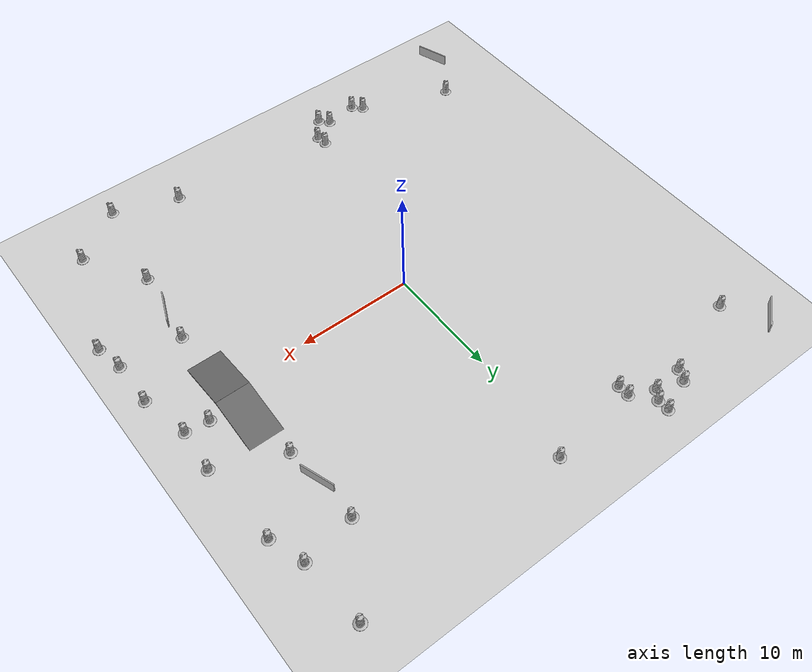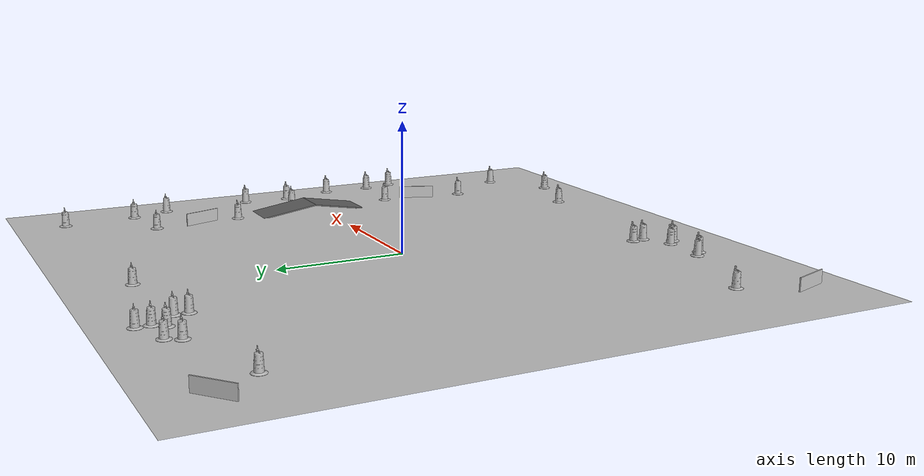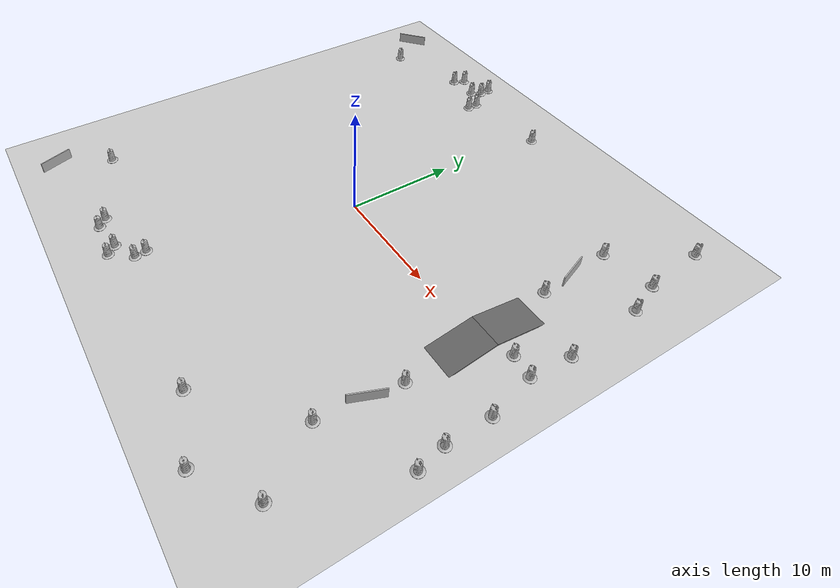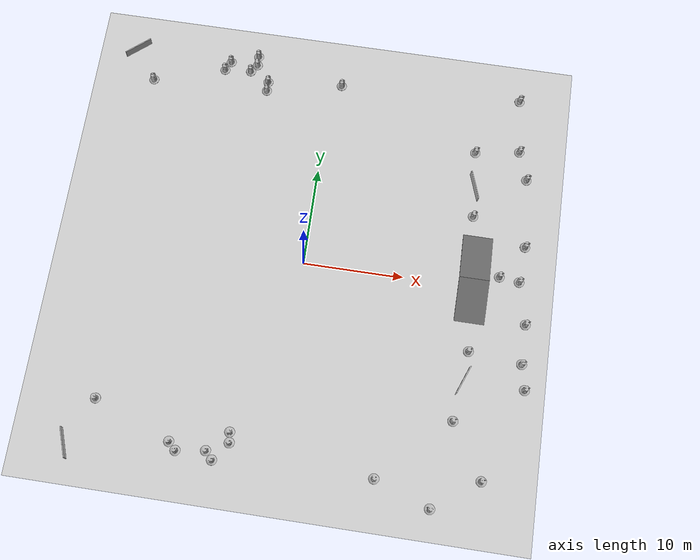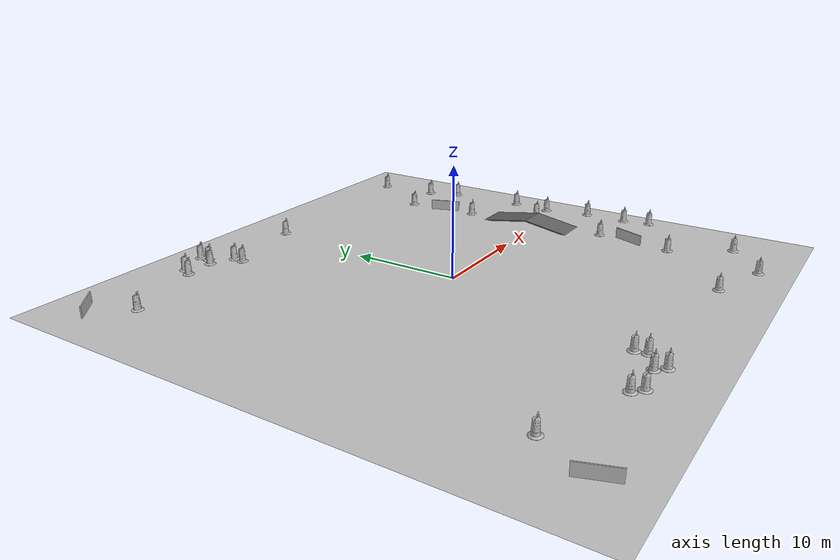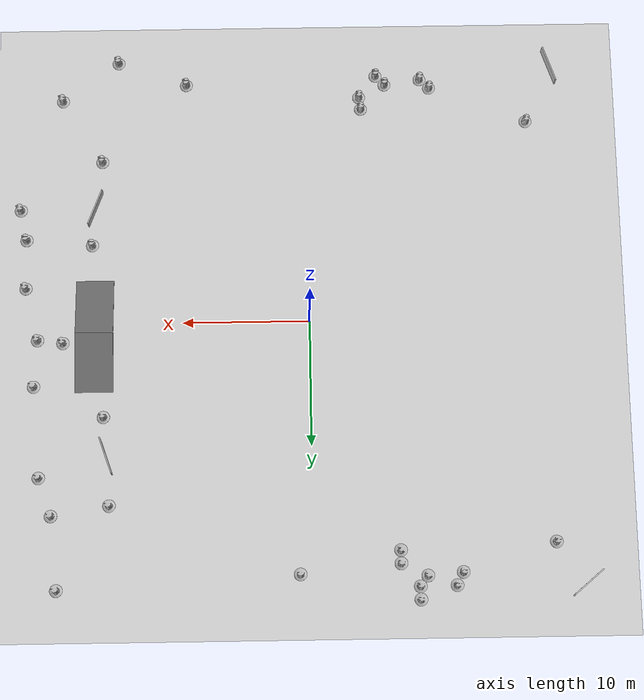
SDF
<sdf version="1.7">
 <world name="default">
  <model name="igvc_basic_ground">
   <static>1</static>
   <link name="link">
    <collision name="collision">
     <geometry><plane><normal>0 0 1</normal><size>50 50</size></plane></geometry>
     <surface><friction><ode><mu>100</mu><mu2>50</mu2></ode></friction></surface>
    </collision>
    <visual name="visual">
     <cast_shadows>0</cast_shadows>
     <geometry><plane><normal>0 0 1</normal><size>50 50</size></plane></geometry>
     <material>
      <script>
       <uri>model://igvc_basic_ground/materials/scripts</uri>
       <uri>model://igvc_basic_ground/materials/textures</uri>
       <name>igvc_pavement/Image</name>
      </script>
     </material>
    </visual>
    <velocity_decay><linear>0</linear><angular>0</angular></velocity_decay>
   </link>
  </model>
  <light name="sun" type="directional">
   <pose>0 0 10 0 -0 0</pose>
   <diffuse>1 1 1 1</diffuse>
   <specular>0.2 0.2 0.2 1</specular>
   <attenuation>
    <range>1000</range>
    <constant>0.9</constant>
    <linear>0.01</linear>
    <quadratic>0.001</quadratic>
   </attenuation>
   <direction>-0.5 0.1 -0.9</direction>
   <spot><inner_angle>0</inner_angle><outer_angle>0</outer_angle><falloff>0</falloff></spot>
  </light>
  <physics name="default_physics" default="0" type="ode">
   <max_step_size>0.001</max_step_size>
   <real_time_factor>1</real_time_factor>
   <real_time_update_rate>1000</real_time_update_rate>
  </physics>
  <scene><ambient>1 1 1 1</ambient><background>0.7 0.7 0.7 1</background><shadows>1</shadows></scene>
  <spherical_coordinates>
   <surface_model>EARTH_WGS84</surface_model>
   <latitude_deg>0</latitude_deg>
   <longitude_deg>0</longitude_deg>
   <elevation>0</elevation>
   <heading_deg>0</heading_deg>
  </spherical_coordinates>
  <model name="Construction Barrel_1">
   <link name="link">
    <inertial>
     <pose>0 0 0.4 0 -0 0</pose>
     <mass>500</mass>
     <inertia><ixx>51.2096</ixx><iyy>51.2096</iyy><izz>25</izz><ixy>0</ixy><ixz>0</ixz><iyz>0</iyz></inertia>
    </inertial>
    <collision name="collision">
     <geometry><mesh><uri>model://construction_barrel/meshes/construction_barrel.dae</uri></mesh></geometry>
    </collision>
    <visual name="visual">
     <geometry><mesh><uri>model://construction_barrel/meshes/construction_barrel.dae</uri></mesh></geometry>
    </visual>
    <velocity_decay><linear>0</linear><angular>0</angular></velocity_decay>
   </link>
   <pose>-17.75 -16.5001 -2e-06 1e-06 8e-06 -0.003073</pose>
   <static>0</static>
  </model>
  <model name="Construction Barrel_3">
   <link name="link">
    <inertial>
     <pose>0 0 0.4 0 -0 0</pose>
     <mass>500</mass>
     <inertia><ixx>51.2096</ixx><iyy>51.2096</iyy><izz>25</izz><ixy>0</ixy><ixz>0</ixz><iyz>0</iyz></inertia>
    </inertial>
    <collision name="collision">
     <geometry><mesh><uri>model://construction_barrel/meshes/construction_barrel.dae</uri></mesh></geometry>
    </collision>
    <visual name="visual">
     <geometry><mesh><uri>model://construction_barrel/meshes/construction_barrel.dae</uri></mesh></geometry>
    </visual>
    <velocity_decay><linear>0</linear><angular>0</angular></velocity_decay>
   </link>
   <pose>-10 -19.5001 -2e-06 1e-06 8e-06 -0.002858</pose>
   <static>0</static>
  </model>
  <model name="Construction Barrel_4">
   <link name="link">
    <inertial>
     <pose>0 0 0.4 0 -0 0</pose>
     <mass>500</mass>
     <inertia><ixx>51.2096</ixx><iyy>51.2096</iyy><izz>25</izz><ixy>0</ixy><ixz>0</ixz><iyz>0</iyz></inertia>
    </inertial>
    <collision name="collision">
     <geometry><mesh><uri>model://construction_barrel/meshes/construction_barrel.dae</uri></mesh></geometry>
    </collision>
    <visual name="visual">
     <geometry><mesh><uri>model://construction_barrel/meshes/construction_barrel.dae</uri></mesh></geometry>
    </visual>
    <velocity_decay><linear>0</linear><angular>0</angular></velocity_decay>
   </link>
   <pose>-9.25006 -20.2501 -2e-06 1e-06 8e-06 -0.002888</pose>
   <static>0</static>
  </model>
  <model name="Construction Barrel_5">
   <link name="link">
    <inertial>
     <pose>0 0 0.4 0 -0 0</pose>
     <mass>500</mass>
     <inertia><ixx>51.2096</ixx><iyy>51.2096</iyy><izz>25</izz><ixy>0</ixy><ixz>0</ixz><iyz>0</iyz></inertia>
    </inertial>
    <collision name="collision">
     <geometry><mesh><uri>model://construction_barrel/meshes/construction_barrel.dae</uri></mesh></geometry>
    </collision>
    <visual name="visual">
     <geometry><mesh><uri>model://construction_barrel/meshes/construction_barrel.dae</uri></mesh></geometry>
    </visual>
    <velocity_decay><linear>0</linear><angular>0</angular></velocity_decay>
   </link>
   <pose>-6.37793 -19.8236 1e-06 3e-06 2e-06 0.061745</pose>
   <static>0</static>
  </model>
  <model name="Construction Barrel_6">
   <link name="link">
    <inertial>
     <pose>0 0 0.4 0 -0 0</pose>
     <mass>500</mass>
     <inertia><ixx>51.2096</ixx><iyy>51.2096</iyy><izz>25</izz><ixy>0</ixy><ixz>0</ixz><iyz>0</iyz></inertia>
    </inertial>
    <collision name="collision">
     <geometry><mesh><uri>model://construction_barrel/meshes/construction_barrel.dae</uri></mesh></geometry>
    </collision>
    <visual name="visual">
     <geometry><mesh><uri>model://construction_barrel/meshes/construction_barrel.dae</uri></mesh></geometry>
    </visual>
    <velocity_decay><linear>0</linear><angular>0</angular></velocity_decay>
   </link>
   <pose>-5.66414 -20.6097 -1e-06 3e-06 -2e-06 -0.002067</pose>
   <static>0</static>
  </model>
  <model name="Construction Barrel_8">
   <link name="link">
    <inertial>
     <pose>0 0 0.4 0 -0 0</pose>
     <mass>500</mass>
     <inertia><ixx>51.2096</ixx><iyy>51.2096</iyy><izz>25</izz><ixy>0</ixy><ixz>0</ixz><iyz>0</iyz></inertia>
    </inertial>
    <collision name="collision">
     <geometry><mesh><uri>model://construction_barrel/meshes/construction_barrel.dae</uri></mesh></geometry>
    </collision>
    <visual name="visual">
     <geometry><mesh><uri>model://construction_barrel/meshes/construction_barrel.dae</uri></mesh></geometry>
    </visual>
    <velocity_decay><linear>0</linear><angular>0</angular></velocity_decay>
   </link>
   <pose>-4.41654 -17.754 -2e-06 -7e-06 -4e-06 0.03876</pose>
   <static>0</static>
  </model>
  <model name="Construction Barrel_9">
   <link name="link">
    <inertial>
     <pose>0 0 0.4 0 -0 0</pose>
     <mass>500</mass>
     <inertia><ixx>51.2096</ixx><iyy>51.2096</iyy><izz>25</izz><ixy>0</ixy><ixz>0</ixz><iyz>0</iyz></inertia>
    </inertial>
    <collision name="collision">
     <geometry><mesh><uri>model://construction_barrel/meshes/construction_barrel.dae</uri></mesh></geometry>
    </collision>
    <visual name="visual">
     <geometry><mesh><uri>model://construction_barrel/meshes/construction_barrel.dae</uri></mesh></geometry>
    </visual>
    <velocity_decay><linear>0</linear><angular>0</angular></velocity_decay>
   </link>
   <pose>-4.29013 -18.7611 -0 0 -0 0.086159</pose>
   <static>0</static>
  </model>
  <model name="Construction Barrel_11">
   <link name="link">
    <inertial>
     <pose>0 0 0.4 0 -0 0</pose>
     <mass>500</mass>
     <inertia><ixx>51.2096</ixx><iyy>51.2096</iyy><izz>25</izz><ixy>0</ixy><ixz>0</ixz><iyz>0</iyz></inertia>
    </inertial>
    <collision name="collision">
     <geometry><mesh><uri>model://construction_barrel/meshes/construction_barrel.dae</uri></mesh></geometry>
    </collision>
    <visual name="visual">
     <geometry><mesh><uri>model://construction_barrel/meshes/construction_barrel.dae</uri></mesh></geometry>
    </visual>
    <velocity_decay><linear>0</linear><angular>0</angular></velocity_decay>
   </link>
   <pose>9.74153 -20.0166 -0 0 -0 0.039833</pose>
   <static>0</static>
  </model>
  <model name="Construction Barrel_12">
   <link name="link">
    <inertial>
     <pose>0 0 0.4 0 -0 0</pose>
     <mass>500</mass>
     <inertia><ixx>51.2096</ixx><iyy>51.2096</iyy><izz>25</izz><ixy>0</ixy><ixz>0</ixz><iyz>0</iyz></inertia>
    </inertial>
    <collision name="collision">
     <geometry><mesh><uri>model://construction_barrel/meshes/construction_barrel.dae</uri></mesh></geometry>
    </collision>
    <visual name="visual">
     <geometry><mesh><uri>model://construction_barrel/meshes/construction_barrel.dae</uri></mesh></geometry>
    </visual>
    <velocity_decay><linear>0</linear><angular>0</angular></velocity_decay>
   </link>
   <pose>15.2499 -21.9926 -0 0 -0 -0.002747</pose>
   <static>0</static>
  </model>
  <model name="Construction Barrel_13">
   <link name="link">
    <inertial>
     <pose>0 0 0.4 0 -0 0</pose>
     <mass>500</mass>
     <inertia><ixx>51.2096</ixx><iyy>51.2096</iyy><izz>25</izz><ixy>0</ixy><ixz>0</ixz><iyz>0</iyz></inertia>
    </inertial>
    <collision name="collision">
     <geometry><mesh><uri>model://construction_barrel/meshes/construction_barrel.dae</uri></mesh></geometry>
    </collision>
    <visual name="visual">
     <geometry><mesh><uri>model://construction_barrel/meshes/construction_barrel.dae</uri></mesh></geometry>
    </visual>
    <velocity_decay><linear>0</linear><angular>0</angular></velocity_decay>
   </link>
   <pose>19.75 -18.7501 -2e-06 1e-06 8e-06 -0.002206</pose>
   <static>0</static>
  </model>
  <model name="Construction Barrel_14">
   <link name="link">
    <inertial>
     <pose>0 0 0.4 0 -0 0</pose>
     <mass>500</mass>
     <inertia><ixx>51.2096</ixx><iyy>51.2096</iyy><izz>25</izz><ixy>0</ixy><ixz>0</ixz><iyz>0</iyz></inertia>
    </inertial>
    <collision name="collision">
     <geometry><mesh><uri>model://construction_barrel/meshes/construction_barrel.dae</uri></mesh></geometry>
    </collision>
    <visual name="visual">
     <geometry><mesh><uri>model://construction_barrel/meshes/construction_barrel.dae</uri></mesh></geometry>
    </visual>
    <velocity_decay><linear>0</linear><angular>0</angular></velocity_decay>
   </link>
   <pose>16.4998 -13.5015 0 0 0 -0.045295</pose>
   <static>0</static>
  </model>
  <model name="Construction Barrel_15">
   <link name="link">
    <inertial>
     <pose>0 0 0.4 0 -0 0</pose>
     <mass>500</mass>
     <inertia><ixx>51.2096</ixx><iyy>51.2096</iyy><izz>25</izz><ixy>0</ixy><ixz>0</ixz><iyz>0</iyz></inertia>
    </inertial>
    <collision name="collision">
     <geometry><mesh><uri>model://construction_barrel/meshes/construction_barrel.dae</uri></mesh></geometry>
    </collision>
    <visual name="visual">
     <geometry><mesh><uri>model://construction_barrel/meshes/construction_barrel.dae</uri></mesh></geometry>
    </visual>
    <velocity_decay><linear>0</linear><angular>0</angular></velocity_decay>
   </link>
   <pose>22.9999 -9.50015 -2e-06 7e-06 -4e-06 -0.000135</pose>
   <static>0</static>
  </model>
  <model name="Construction Barrel_16">
   <link name="link">
    <inertial>
     <pose>0 0 0.4 0 -0 0</pose>
     <mass>500</mass>
     <inertia><ixx>51.2096</ixx><iyy>51.2096</iyy><izz>25</izz><ixy>0</ixy><ixz>0</ixz><iyz>0</iyz></inertia>
    </inertial>
    <collision name="collision">
     <geometry><mesh><uri>model://construction_barrel/meshes/construction_barrel.dae</uri></mesh></geometry>
    </collision>
    <visual name="visual">
     <geometry><mesh><uri>model://construction_barrel/meshes/construction_barrel.dae</uri></mesh></geometry>
    </visual>
    <velocity_decay><linear>0</linear><angular>0</angular></velocity_decay>
   </link>
   <pose>17.25 -6.50011 -2e-06 1e-06 8e-06 -0.001931</pose>
   <static>0</static>
  </model>
  <model name="Construction Barrel_17">
   <link name="link">
    <inertial>
     <pose>0 0 0.4 0 -0 0</pose>
     <mass>500</mass>
     <inertia><ixx>51.2096</ixx><iyy>51.2096</iyy><izz>25</izz><ixy>0</ixy><ixz>0</ixz><iyz>0</iyz></inertia>
    </inertial>
    <collision name="collision">
     <geometry><mesh><uri>model://construction_barrel/meshes/construction_barrel.dae</uri></mesh></geometry>
    </collision>
    <visual name="visual">
     <geometry><mesh><uri>model://construction_barrel/meshes/construction_barrel.dae</uri></mesh></geometry>
    </visual>
    <velocity_decay><linear>0</linear><angular>0</angular></velocity_decay>
   </link>
   <pose>22.5 -7.00012 -1e-06 3e-06 7e-06 -0.000993</pose>
   <static>0</static>
  </model>
  <model name="Construction Barrel_18">
   <link name="link">
    <inertial>
     <pose>0 0 0.4 0 -0 0</pose>
     <mass>500</mass>
     <inertia><ixx>51.2096</ixx><iyy>51.2096</iyy><izz>25</izz><ixy>0</ixy><ixz>0</ixz><iyz>0</iyz></inertia>
    </inertial>
    <collision name="collision">
     <geometry><mesh><uri>model://construction_barrel/meshes/construction_barrel.dae</uri></mesh></geometry>
    </collision>
    <visual name="visual">
     <geometry><mesh><uri>model://construction_barrel/meshes/construction_barrel.dae</uri></mesh></geometry>
    </visual>
    <velocity_decay><linear>0</linear><angular>0</angular></velocity_decay>
   </link>
   <pose>22.5 -3.00011 -2e-06 1e-06 8e-06 -0.001837</pose>
   <static>0</static>
  </model>
  <model name="Construction Barrel_19">
   <link name="link">
    <inertial>
     <pose>0 0 0.4 0 -0 0</pose>
     <mass>500</mass>
     <inertia><ixx>51.2096</ixx><iyy>51.2096</iyy><izz>25</izz><ixy>0</ixy><ixz>0</ixz><iyz>0</iyz></inertia>
    </inertial>
    <collision name="collision">
     <geometry><mesh><uri>model://construction_barrel/meshes/construction_barrel.dae</uri></mesh></geometry>
    </collision>
    <visual name="visual">
     <geometry><mesh><uri>model://construction_barrel/meshes/construction_barrel.dae</uri></mesh></geometry>
    </visual>
    <velocity_decay><linear>0</linear><angular>0</angular></velocity_decay>
   </link>
   <pose>21.4999 1.24986 -2e-06 -7e-06 -9e-06 -0.000117</pose>
   <static>0</static>
  </model>
  <model name="Construction Barrel_20">
   <link name="link">
    <inertial>
     <pose>0 0 0.4 0 -0 0</pose>
     <mass>500</mass>
     <inertia><ixx>51.2096</ixx><iyy>51.2096</iyy><izz>25</izz><ixy>0</ixy><ixz>0</ixz><iyz>0</iyz></inertia>
    </inertial>
    <collision name="collision">
     <geometry><mesh><uri>model://construction_barrel/meshes/construction_barrel.dae</uri></mesh></geometry>
    </collision>
    <visual name="visual">
     <geometry><mesh><uri>model://construction_barrel/meshes/construction_barrel.dae</uri></mesh></geometry>
    </visual>
    <velocity_decay><linear>0</linear><angular>0</angular></velocity_decay>
   </link>
   <pose>19.4996 1.5001 -2e-06 8e-06 -4e-06 5.1e-05</pose>
   <static>0</static>
  </model>
  <model name="Construction Barrel_21">
   <link name="link">
    <inertial>
     <pose>0 0 0.4 0 -0 0</pose>
     <mass>500</mass>
     <inertia><ixx>51.2096</ixx><iyy>51.2096</iyy><izz>25</izz><ixy>0</ixy><ixz>0</ixz><iyz>0</iyz></inertia>
    </inertial>
    <collision name="collision">
     <geometry><mesh><uri>model://construction_barrel/meshes/construction_barrel.dae</uri></mesh></geometry>
    </collision>
    <visual name="visual">
     <geometry><mesh><uri>model://construction_barrel/meshes/construction_barrel.dae</uri></mesh></geometry>
    </visual>
    <velocity_decay><linear>0</linear><angular>0</angular></velocity_decay>
   </link>
   <pose>21.75 4.99988 -2e-06 7e-06 -4e-06 -0.001417</pose>
   <static>0</static>
  </model>
  <model name="Construction Barrel_22">
   <link name="link">
    <inertial>
     <pose>0 0 0.4 0 -0 0</pose>
     <mass>500</mass>
     <inertia><ixx>51.2096</ixx><iyy>51.2096</iyy><izz>25</izz><ixy>0</ixy><ixz>0</ixz><iyz>0</iyz></inertia>
    </inertial>
    <collision name="collision">
     <geometry><mesh><uri>model://construction_barrel/meshes/construction_barrel.dae</uri></mesh></geometry>
    </collision>
    <visual name="visual">
     <geometry><mesh><uri>model://construction_barrel/meshes/construction_barrel.dae</uri></mesh></geometry>
    </visual>
    <velocity_decay><linear>0</linear><angular>0</angular></velocity_decay>
   </link>
   <pose>21.25 12.2499 -3e-06 0 -1.2e-05 -0.001355</pose>
   <static>0</static>
  </model>
  <model name="Construction Barrel_23">
   <link name="link">
    <inertial>
     <pose>0 0 0.4 0 -0 0</pose>
     <mass>500</mass>
     <inertia><ixx>51.2096</ixx><iyy>51.2096</iyy><izz>25</izz><ixy>0</ixy><ixz>0</ixz><iyz>0</iyz></inertia>
    </inertial>
    <collision name="collision">
     <geometry><mesh><uri>model://construction_barrel/meshes/construction_barrel.dae</uri></mesh></geometry>
    </collision>
    <visual name="visual">
     <geometry><mesh><uri>model://construction_barrel/meshes/construction_barrel.dae</uri></mesh></geometry>
    </visual>
    <velocity_decay><linear>0</linear><angular>0</angular></velocity_decay>
   </link>
   <pose>16.25 7.49988 -3e-06 0 -1.2e-05 -0.0012</pose>
   <static>0</static>
  </model>
  <model name="Construction Barrel_24">
   <link name="link">
    <inertial>
     <pose>0 0 0.4 0 -0 0</pose>
     <mass>500</mass>
     <inertia><ixx>51.2096</ixx><iyy>51.2096</iyy><izz>25</izz><ixy>0</ixy><ixz>0</ixz><iyz>0</iyz></inertia>
    </inertial>
    <collision name="collision">
     <geometry><mesh><uri>model://construction_barrel/meshes/construction_barrel.dae</uri></mesh></geometry>
    </collision>
    <visual name="visual">
     <geometry><mesh><uri>model://construction_barrel/meshes/construction_barrel.dae</uri></mesh></geometry>
    </visual>
    <velocity_decay><linear>0</linear><angular>0</angular></velocity_decay>
   </link>
   <pose>20.25 15.2499 -0 0 0 -0.001132</pose>
   <static>0</static>
  </model>
  <model name="Construction Barrel_25">
   <link name="link">
    <inertial>
     <pose>0 0 0.4 0 -0 0</pose>
     <mass>500</mass>
     <inertia><ixx>51.2096</ixx><iyy>51.2096</iyy><izz>25</izz><ixy>0</ixy><ixz>0</ixz><iyz>0</iyz></inertia>
    </inertial>
    <collision name="collision">
     <geometry><mesh><uri>model://construction_barrel/meshes/construction_barrel.dae</uri></mesh></geometry>
    </collision>
    <visual name="visual">
     <geometry><mesh><uri>model://construction_barrel/meshes/construction_barrel.dae</uri></mesh></geometry>
    </visual>
    <velocity_decay><linear>0</linear><angular>0</angular></velocity_decay>
   </link>
   <pose>15.75 14.4999 -0 0 0 -0.001114</pose>
   <static>0</static>
  </model>
  <model name="Construction Barrel_26">
   <link name="link">
    <inertial>
     <pose>0 0 0.4 0 -0 0</pose>
     <mass>500</mass>
     <inertia><ixx>51.2096</ixx><iyy>51.2096</iyy><izz>25</izz><ixy>0</ixy><ixz>0</ixz><iyz>0</iyz></inertia>
    </inertial>
    <collision name="collision">
     <geometry><mesh><uri>model://construction_barrel/meshes/construction_barrel.dae</uri></mesh></geometry>
    </collision>
    <visual name="visual">
     <geometry><mesh><uri>model://construction_barrel/meshes/construction_barrel.dae</uri></mesh></geometry>
    </visual>
    <velocity_decay><linear>0</linear><angular>0</angular></velocity_decay>
   </link>
   <pose>19.75 20.9999 -0 0 0 -0.001087</pose>
   <static>0</static>
  </model>
  <model name="Construction Barrel_28">
   <link name="link">
    <inertial>
     <pose>0 0 0.4 0 -0 0</pose>
     <mass>500</mass>
     <inertia><ixx>51.2096</ixx><iyy>51.2096</iyy><izz>25</izz><ixy>0</ixy><ixz>0</ixz><iyz>0</iyz></inertia>
    </inertial>
    <collision name="collision">
     <geometry><mesh><uri>model://construction_barrel/meshes/construction_barrel.dae</uri></mesh></geometry>
    </collision>
    <visual name="visual">
     <geometry><mesh><uri>model://construction_barrel/meshes/construction_barrel.dae</uri></mesh></geometry>
    </visual>
    <velocity_decay><linear>0</linear><angular>0</angular></velocity_decay>
   </link>
   <pose>-18.75 17.7499 -2e-06 7e-06 -4e-06 -0.000925</pose>
   <static>0</static>
  </model>
  <model name="Construction Barrel_29">
   <link name="link">
    <inertial>
     <pose>0 0 0.4 0 -0 0</pose>
     <mass>500</mass>
     <inertia><ixx>51.2096</ixx><iyy>51.2096</iyy><izz>25</izz><ixy>0</ixy><ixz>0</ixz><iyz>0</iyz></inertia>
    </inertial>
    <collision name="collision">
     <geometry><mesh><uri>model://construction_barrel/meshes/construction_barrel.dae</uri></mesh></geometry>
    </collision>
    <visual name="visual">
     <geometry><mesh><uri>model://construction_barrel/meshes/construction_barrel.dae</uri></mesh></geometry>
    </visual>
    <velocity_decay><linear>0</linear><angular>0</angular></velocity_decay>
   </link>
   <pose>-11.5 19.9999 -1e-06 3e-06 -2e-06 -0.000897</pose>
   <static>0</static>
  </model>
  <model name="Construction Barrel_30">
   <link name="link">
    <inertial>
     <pose>0 0 0.4 0 -0 0</pose>
     <mass>500</mass>
     <inertia><ixx>51.2096</ixx><iyy>51.2096</iyy><izz>25</izz><ixy>0</ixy><ixz>0</ixz><iyz>0</iyz></inertia>
    </inertial>
    <collision name="collision">
     <geometry><mesh><uri>model://construction_barrel/meshes/construction_barrel.dae</uri></mesh></geometry>
    </collision>
    <visual name="visual">
     <geometry><mesh><uri>model://construction_barrel/meshes/construction_barrel.dae</uri></mesh></geometry>
    </visual>
    <velocity_decay><linear>0</linear><angular>0</angular></velocity_decay>
   </link>
   <pose>-11 20.9999 -1e-06 3e-06 -2e-06 -0.001984</pose>
   <static>0</static>
  </model>
  <model name="Construction Barrel_31">
   <link name="link">
    <inertial>
     <pose>0 0 0.4 0 -0 0</pose>
     <mass>500</mass>
     <inertia><ixx>51.2096</ixx><iyy>51.2096</iyy><izz>25</izz><ixy>0</ixy><ixz>0</ixz><iyz>0</iyz></inertia>
    </inertial>
    <collision name="collision">
     <geometry><mesh><uri>model://construction_barrel/meshes/construction_barrel.dae</uri></mesh></geometry>
    </collision>
    <visual name="visual">
     <geometry><mesh><uri>model://construction_barrel/meshes/construction_barrel.dae</uri></mesh></geometry>
    </visual>
    <velocity_decay><linear>0</linear><angular>0</angular></velocity_decay>
   </link>
   <pose>-8.19795 22.0623 -0 -0 -0 -0.069524</pose>
   <static>0</static>
  </model>
  <model name="Construction Barrel_32">
   <link name="link">
    <inertial>
     <pose>0 0 0.4 0 -0 0</pose>
     <mass>500</mass>
     <inertia><ixx>51.2096</ixx><iyy>51.2096</iyy><izz>25</izz><ixy>0</ixy><ixz>0</ixz><iyz>0</iyz></inertia>
    </inertial>
    <collision name="collision">
     <geometry><mesh><uri>model://construction_barrel/meshes/construction_barrel.dae</uri></mesh></geometry>
    </collision>
    <visual name="visual">
     <geometry><mesh><uri>model://construction_barrel/meshes/construction_barrel.dae</uri></mesh></geometry>
    </visual>
    <velocity_decay><linear>0</linear><angular>0</angular></velocity_decay>
   </link>
   <pose>0.999872 19.9999 -2e-06 7e-06 -4e-06 -0.00083</pose>
   <static>0</static>
  </model>
  <model name="Construction Barrel_33">
   <link name="link">
    <inertial>
     <pose>0 0 0.4 0 -0 0</pose>
     <mass>500</mass>
     <inertia><ixx>51.2096</ixx><iyy>51.2096</iyy><izz>25</izz><ixy>0</ixy><ixz>0</ixz><iyz>0</iyz></inertia>
    </inertial>
    <collision name="collision">
     <geometry><mesh><uri>model://construction_barrel/meshes/construction_barrel.dae</uri></mesh></geometry>
    </collision>
    <visual name="visual">
     <geometry><mesh><uri>model://construction_barrel/meshes/construction_barrel.dae</uri></mesh></geometry>
    </visual>
    <velocity_decay><linear>0</linear><angular>0</angular></velocity_decay>
   </link>
   <pose>-6.74398 18.2474 0 0 -0 0.047432</pose>
   <static>0</static>
  </model>
  <model name="Construction Barrel_34">
   <link name="link">
    <inertial>
     <pose>0 0 0.4 0 -0 0</pose>
     <mass>500</mass>
     <inertia><ixx>51.2096</ixx><iyy>51.2096</iyy><izz>25</izz><ixy>0</ixy><ixz>0</ixz><iyz>0</iyz></inertia>
    </inertial>
    <collision name="collision">
     <geometry><mesh><uri>model://construction_barrel/meshes/construction_barrel.dae</uri></mesh></geometry>
    </collision>
    <visual name="visual">
     <geometry><mesh><uri>model://construction_barrel/meshes/construction_barrel.dae</uri></mesh></geometry>
    </visual>
    <velocity_decay><linear>0</linear><angular>0</angular></velocity_decay>
   </link>
   <pose>-8.18135 21.0526 0.010525 0.020652 0.002725 -0.076551</pose>
   <static>0</static>
  </model>
  <model name="Construction Barrel_35">
   <link name="link">
    <inertial>
     <pose>0 0 0.4 0 -0 0</pose>
     <mass>500</mass>
     <inertia><ixx>51.2096</ixx><iyy>51.2096</iyy><izz>25</izz><ixy>0</ixy><ixz>0</ixz><iyz>0</iyz></inertia>
    </inertial>
    <collision name="collision">
     <geometry><mesh><uri>model://construction_barrel/meshes/construction_barrel.dae</uri></mesh></geometry>
    </collision>
    <visual name="visual">
     <geometry><mesh><uri>model://construction_barrel/meshes/construction_barrel.dae</uri></mesh></geometry>
    </visual>
    <velocity_decay><linear>0</linear><angular>0</angular></velocity_decay>
   </link>
   <pose>-8.77826 20.2311 -2.9e-05 -4e-06 -6e-06 -0.000273</pose>
   <static>0</static>
  </model>
  <model name="Construction Barrel_36">
   <link name="link">
    <inertial>
     <pose>0 0 0.4 0 -0 0</pose>
     <mass>500</mass>
     <inertia><ixx>51.2096</ixx><iyy>51.2096</iyy><izz>25</izz><ixy>0</ixy><ixz>0</ixz><iyz>0</iyz></inertia>
    </inertial>
    <collision name="collision">
     <geometry><mesh><uri>model://construction_barrel/meshes/construction_barrel.dae</uri></mesh></geometry>
    </collision>
    <visual name="visual">
     <geometry><mesh><uri>model://construction_barrel/meshes/construction_barrel.dae</uri></mesh></geometry>
    </visual>
    <velocity_decay><linear>0</linear><angular>0</angular></velocity_decay>
   </link>
   <pose>-6.74769 19.2659 -0 2e-06 -6e-06 -0.045892</pose>
   <static>0</static>
  </model>
  <model name="barricade_1">
   <static>1</static>
   <pose>16 10.65 0.5 0 -0 1.9</pose>
   <link name="link">
    <collision name="collision"><geometry><box><size>3 0.1 1</size></box></geometry></collision>
    <visual name="visual"><geometry><box><size>3 0.1 1</size></box></geometry></visual>
   </link>
  </model>
  <model name="barricade_2">
   <static>1</static>
   <pose>17 -9.5 0.5 0 -0 1.2</pose>
   <link name="link">
    <collision name="collision"><geometry><box><size>3 0.1 1</size></box></geometry></collision>
    <visual name="visual"><geometry><box><size>3 0.1 1</size></box></geometry></visual>
   </link>
  </model>
  <model name="barricade_3">
   <static>1</static>
   <pose>-19.8 -21.17 0.5 0 -0 1.9</pose>
   <link name="link">
    <collision name="collision"><geometry><box><size>3 0.1 1</size></box></geometry></collision>
    <visual name="visual"><geometry><box><size>3 0.1 1</size></box></geometry></visual>
   </link>
  </model>
  <model name="barricade_4">
   <static>1</static>
   <pose>-21 21 0.5 0 -0 0.7</pose>
   <link name="link">
    <collision name="collision"><geometry><box><size>3 0.1 1</size></box></geometry></collision>
    <visual name="visual"><geometry><box><size>3 0.1 1</size></box></geometry></visual>
   </link>
  </model>
  <model name="ramp_up">
   <static>1</static>
   <pose>17 -2.15597 0.121523 0.162432 -0 0</pose>
   <link name="link">
    <collision name="collision"><geometry><box><size>3 6 0.1</size></box></geometry></collision>
    <visual name="visual">
     <geometry><box><size>3 6 0.1</size></box></geometry>
     <material>
      <ambient>0.4 0.7 0.6 1</ambient>
      <specular>0.2 0.2 0.2 1</specular>
      <diffuse>0.4 0.4 0.4 1</diffuse>
     </material>
    </visual>
   </link>
  </model>
  <model name="ramp_down">
   <static>1</static>
   <pose>17 3.75 0.15 0.152413 0 3.14</pose>
   <link name="link">
    <collision name="collision"><geometry><box><size>3 6 0.1</size></box></geometry></collision>
    <visual name="visual">
     <geometry><box><size>3 6 0.1</size></box></geometry>
     <material>
      <ambient>0.4 0.7 0.6 1</ambient>
      <specular>0.2 0.2 0.2 1</specular>
      <diffuse>0.4 0.4 0.4 1</diffuse>
     </material>
    </visual>
   </link>
  </model>
  <gravity>0 0 -9.8</gravity>
  <magnetic_field>6e-06 2.3e-05 -4.2e-05</magnetic_field>
  <atmosphere type="adiabatic"/>
  <audio><device>default</device></audio>
 </world>
</sdf>
